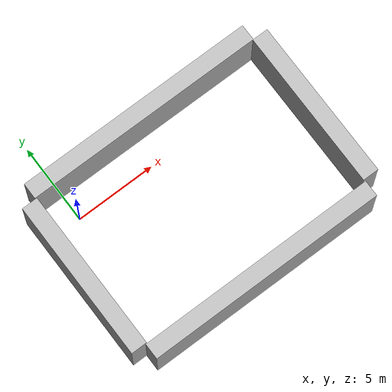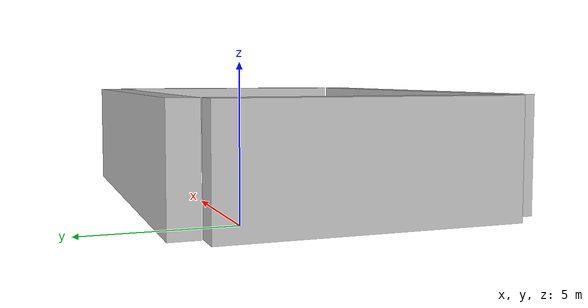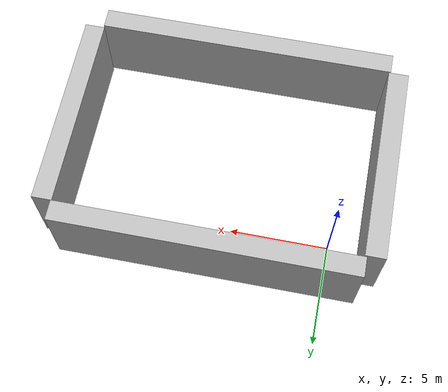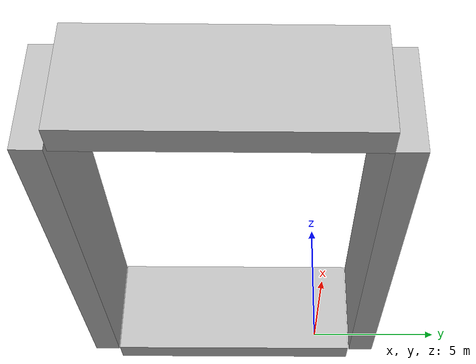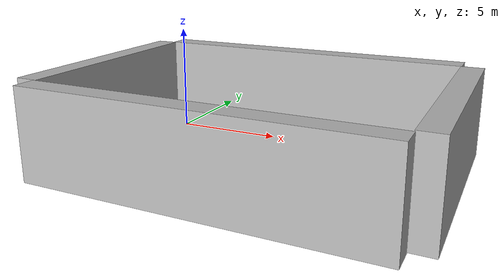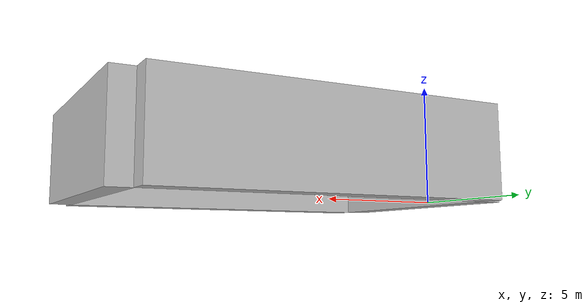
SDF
<?xml version="1.0" ?>
<sdf version="1.4">
  <model name="wall_adr">
    <static>1</static>
    <link name="link0">
			<pose frame=''>5.85 2.1 2 0 -0 0</pose>
        <collision name="box_collision">
          <geometry>
            <box>
              <size>15 1 4</size>
            </box>
          </geometry>
      <surface>
        <friction>
          <ode>
            <mu>0.99</mu>
            <mu2>0.99</mu2>
          </ode>
        </friction>
      </surface>
        </collision>

   	<visual name="visual">
          <geometry>
            <box>
              <size>15 1 4</size>
            </box>
          </geometry>
        <material>
          <script>
            <uri>model://wall_adr/materials/scripts</uri>
            <uri>model://wall_adr/materials/textures</uri>
            <name>leftside</name>
          </script>
        </material>
        <pose frame=''>0 0 0. 0 -0 0</pose>
        <cast_shadows>1</cast_shadows>
        <transparency>0.0</transparency>
        </visual>
      <sensor name="contact_sensor_1" type="contact">
	<plugin name="my_contact_plugin" filename="libgazebo_ros_bumper.so"/>
          <contact>
            <collision>box_collision</collision>
          </contact>
      </sensor>
    </link>

    <link name="link1">
			<pose frame=''>5.85 -9 2 0 -0 3.14</pose>
        <collision name="box_collision">
          <geometry>
            <box>
              <size>15 1 4</size>
            </box>
          </geometry>
      <surface>
        <friction>
          <ode>
            <mu>0.99</mu>
            <mu2>0.99</mu2>
          </ode>
        </friction>
      </surface>
        </collision>

   	<visual name="visual">
          <geometry>
            <box>
              <size>15 1 4</size>
            </box>
          </geometry>
        <material>
          <script>
            <uri>model://wall_adr/materials/scripts</uri>
            <uri>model://wall_adr/materials/textures</uri>
            <name>rightside</name>
          </script>
        </material>
        <pose frame=''>0 0 0. 0 -0 0</pose>
        <cast_shadows>1</cast_shadows>
        <transparency>0.0</transparency>
        </visual>
      <sensor name="contact_sensor_1" type="contact">
	<plugin name="my_contact_plugin" filename="libgazebo_ros_bumper.so"/>
          <contact>
            <collision>box_collision</collision>
          </contact>
      </sensor>
    </link>

    <link name="link2">
			<pose frame=''>13.8 -3.4 2 0 -0 1.57</pose>
        <collision name="box_collision">
          <geometry>
            <box>
              <size>10 1 4</size>
            </box>
          </geometry>
      <surface>
        <friction>
          <ode>
            <mu>0.99</mu>
            <mu2>0.99</mu2>
          </ode>
        </friction>
      </surface>
        </collision>

   	<visual name="visual">
          <geometry>
            <box>
              <size>10 1 4</size>
            </box>
          </geometry>
        <material>
          <script>
            <uri>model://wall_adr/materials/scripts</uri>
            <uri>model://wall_adr/materials/textures</uri>
            <name>frontside</name>
          </script>
        </material>
        <pose frame=''>0 0 0. 0 -0 0</pose>
        <cast_shadows>1</cast_shadows>
        <transparency>0.0</transparency>
        </visual>
      <sensor name="contact_sensor_1" type="contact">
	<plugin name="my_contact_plugin" filename="libgazebo_ros_bumper.so"/>
          <contact>
            <collision>box_collision</collision>
          </contact>
      </sensor>
    </link>

    <link name="link3">
			<pose frame=''>-2.05 -3.45 2 0 -0 1.57</pose>
        <collision name="box_collision">
          <geometry>
            <box>
              <size>10 1 4</size>
            </box>
          </geometry>
      <surface>
        <friction>
          <ode>
            <mu>0.99</mu>
            <mu2>0.99</mu2>
          </ode>
        </friction>
      </surface>
        </collision>

   	<visual name="visual">
          <geometry>
            <box>
              <size>10 1 4</size>
            </box>
          </geometry>
        <material>
          <script>
            <uri>model://wall_adr/materials/scripts</uri>
            <uri>model://wall_adr/materials/textures</uri>
            <name>backside</name>
          </script>
        </material>
        <pose frame=''>0 0 0. 0 -0 0</pose>
        <cast_shadows>1</cast_shadows>
        <transparency>0.0</transparency>
        </visual>
      <sensor name="contact_sensor_1" type="contact">
	<plugin name="my_contact_plugin" filename="libgazebo_ros_bumper.so"/>
          <contact>
            <collision>box_collision</collision>
          </contact>
      </sensor>
    </link>

		    <plugin name="model_push" filename="libgazebo_moving_platform.so">
        <robotNamespace>/</robotNamespace>
      </plugin>
  </model>
</sdf>
